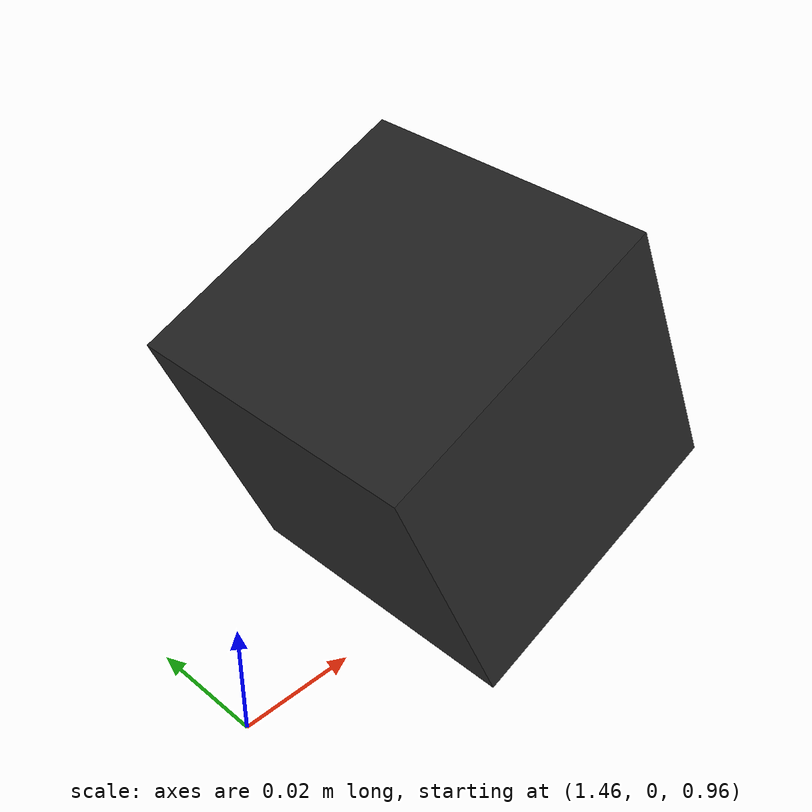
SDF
<?xml version="1.0" ?>
<sdf version="1.7">
  <!--
    斜め前方からのオブザーバーカメラ.
    UR5e ベース(原点)から見て前方 1.5m / 高さ 1.0m に配置し、
    pitch を少し下向けて UR5e 本体全体が画面に収まるようにしている。
  -->
  <model name="overhead_camera">
    <static>true</static>
    <pose>1.5 0 1.0 0 0.4 3.14159</pose>
    <link name="link">
      <visual name="cam_visual">
        <geometry><box><size>0.05 0.05 0.05</size></box></geometry>
        <material>
          <ambient>0.1 0.1 0.1 1</ambient>
          <diffuse>0.15 0.15 0.15 1</diffuse>
        </material>
      </visual>
      <sensor name="camera" type="camera">
        <camera>
          <horizontal_fov>1.0</horizontal_fov>
          <image>
            <width>1280</width>
            <height>720</height>
            <format>R8G8B8</format>
          </image>
          <clip><near>0.05</near><far>20</far></clip>
        </camera>
        <update_rate>30</update_rate>
        <always_on>1</always_on>
        <visualize>0</visualize>
        <plugin name="camera_controller" filename="libgazebo_ros_camera.so">
          <!-- camera_name=camera にして直接 /camera/image_raw に publish させる
               （remapping が効きにくい SDF プラグインの仕様回避） -->
          <camera_name>camera</camera_name>
          <frame_name>overhead_cam_link</frame_name>
        </plugin>
      </sensor>
    </link>
  </model>
</sdf>
